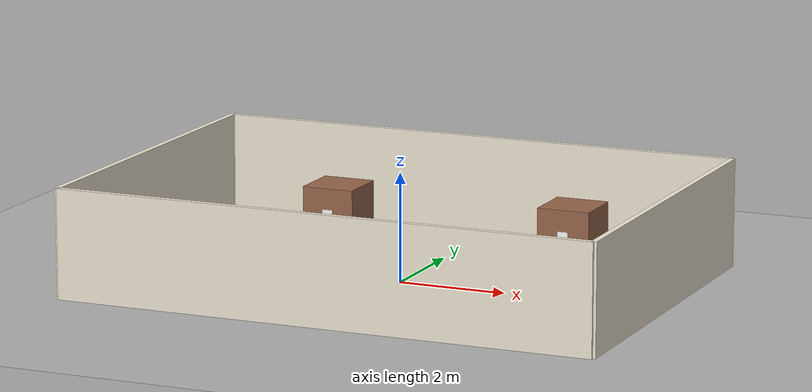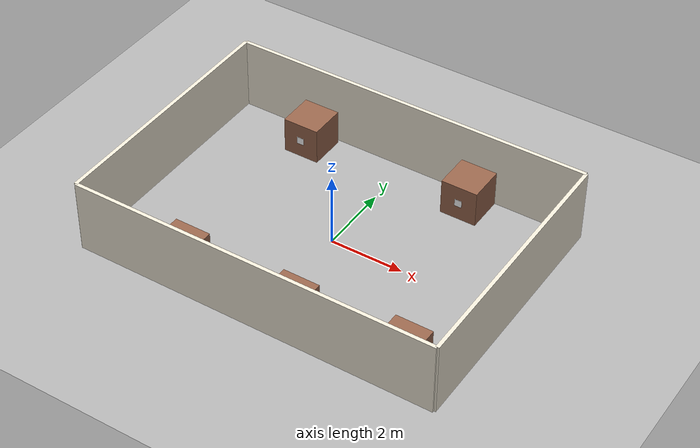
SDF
<?xml version="1.0" ?>
<sdf version='1.9'>
  <world name='smart_lab'>

    <plugin name='ignition::gazebo::systems::Physics' filename='ignition-gazebo-physics-system'/>
    <plugin name='ignition::gazebo::systems::UserCommands' filename='ignition-gazebo-user-commands-system'/>
    <plugin name='ignition::gazebo::systems::SceneBroadcaster' filename='ignition-gazebo-scene-broadcaster-system'/>
    <plugin name='ignition::gazebo::systems::Sensors' filename='ignition-gazebo-sensors-system'>
      <render_engine>ogre2</render_engine>
    </plugin>
    <plugin name='ignition::gazebo::systems::Imu' filename='ignition-gazebo-imu-system'/>

    <physics name='1ms' type='ignored'>
      <max_step_size>0.001</max_step_size>
      <real_time_factor>1</real_time_factor>
    </physics>
    <gravity>0 0 -9.8</gravity>

    <scene>
      <ambient>0.4 0.4 0.4 1</ambient>
      <background>0.7 0.7 0.7 1</background>
      <shadows>true</shadows>
    </scene>

    <light name='sun' type='directional'>
      <pose>0 0 10 0 0 0</pose>
      <cast_shadows>true</cast_shadows>
      <direction>-0.5 0.1 -0.9</direction>
      <diffuse>1 1 1 1</diffuse>
      <specular>0.5 0.5 0.5 1</specular>
      <attenuation>
        <range>1000</range>
        <linear>0.01</linear>
        <constant>0.9</constant>
        <quadratic>0.001</quadratic>
      </attenuation>
    </light>

    <model name='ground_plane'>
      <static>true</static>
      <link name='link'>
        <collision name='c'><geometry><plane><normal>0 0 1</normal><size>30 30</size></plane></geometry></collision>
        <visual name='v'>
          <geometry><plane><normal>0 0 1</normal><size>30 30</size></plane></geometry>
          <material><ambient>0.7 0.7 0.7 1</ambient><diffuse>0.7 0.7 0.7 1</diffuse></material>
        </visual>
      </link>
    </model>

    <model name='wall_west'>
      <static>true</static><pose>-5 0 1 0 0 0</pose>
      <link name='link'>
        <collision name='c'><geometry><box><size>0.1 7 2</size></box></geometry></collision>
        <visual name='v'><geometry><box><size>0.1 7 2</size></box></geometry>
          <material><ambient>0.95 0.92 0.85 1</ambient><diffuse>0.95 0.92 0.85 1</diffuse></material></visual>
      </link>
    </model>
    <model name='wall_east'>
      <static>true</static><pose>5 0 1 0 0 0</pose>
      <link name='link'>
        <collision name='c'><geometry><box><size>0.1 7 2</size></box></geometry></collision>
        <visual name='v'><geometry><box><size>0.1 7 2</size></box></geometry>
          <material><ambient>0.95 0.92 0.85 1</ambient><diffuse>0.95 0.92 0.85 1</diffuse></material></visual>
      </link>
    </model>
    <model name='wall_south'>
      <static>true</static><pose>0 -3.5 1 0 0 1.5707</pose>
      <link name='link'>
        <collision name='c'><geometry><box><size>0.1 10 2</size></box></geometry></collision>
        <visual name='v'><geometry><box><size>0.1 10 2</size></box></geometry>
          <material><ambient>0.95 0.92 0.85 1</ambient><diffuse>0.95 0.92 0.85 1</diffuse></material></visual>
      </link>
    </model>
    <model name='wall_north'>
      <static>true</static><pose>0 3.5 1 0 0 1.5707</pose>
      <link name='link'>
        <collision name='c'><geometry><box><size>0.1 10 2</size></box></geometry></collision>
        <visual name='v'><geometry><box><size>0.1 10 2</size></box></geometry>
          <material><ambient>0.95 0.92 0.85 1</ambient><diffuse>0.95 0.92 0.85 1</diffuse></material></visual>
      </link>
    </model>

    <model name='docking_box_0'>
      <static>true</static><pose>-2.47 -2.82 0.5 0 0 0</pose>
      <link name='link'>
        <collision name='c'><geometry><box><size>1 1 1</size></box></geometry></collision>
        <visual name='v'><geometry><box><size>1 1 1</size></box></geometry>
          <material><ambient>0.4 0.3 0.2 1</ambient><diffuse>0.6 0.4 0.3 1</diffuse></material></visual>
      </link>
    </model>
    <model name='docking_box_1'>
      <static>true</static><pose>0.72 -2.88 0.5 0 0 0</pose>
      <link name='link'>
        <collision name='c'><geometry><box><size>1 1 1</size></box></geometry></collision>
        <visual name='v'><geometry><box><size>1 1 1</size></box></geometry>
          <material><ambient>0.4 0.3 0.2 1</ambient><diffuse>0.6 0.4 0.3 1</diffuse></material></visual>
      </link>
    </model>
    <model name='docking_box_2'>
      <static>true</static><pose>3.70 -2.74 0.5 0 0 0</pose>
      <link name='link'>
        <collision name='c'><geometry><box><size>1 1 1</size></box></geometry></collision>
        <visual name='v'><geometry><box><size>1 1 1</size></box></geometry>
          <material><ambient>0.4 0.3 0.2 1</ambient><diffuse>0.6 0.4 0.3 1</diffuse></material></visual>
      </link>
    </model>
    <model name='docking_box_3'>
      <static>true</static><pose>-2.51 2.85 0.5 0 0 0</pose>
      <link name='link'>
        <collision name='c'><geometry><box><size>1 1 1</size></box></geometry></collision>
        <visual name='v'><geometry><box><size>1 1 1</size></box></geometry>
          <material><ambient>0.4 0.3 0.2 1</ambient><diffuse>0.6 0.4 0.3 1</diffuse></material></visual>
      </link>
    </model>
    <model name='docking_box_4'>
      <static>true</static><pose>2.15 2.93 0.5 0 0 0</pose>
      <link name='link'>
        <collision name='c'><geometry><box><size>1 1 1</size></box></geometry></collision>
        <visual name='v'><geometry><box><size>1 1 1</size></box></geometry>
          <material><ambient>0.4 0.3 0.2 1</ambient><diffuse>0.6 0.4 0.3 1</diffuse></material></visual>
      </link>
    </model>

    <!-- ===== ArUco 마커 5개 (인라인 + 절대경로 텍스처) ===== -->
    <model name='aruco_marker_0'>
      <static>true</static>
      <pose>-2.47 -2.31 0.5 0 0 3.1415</pose>
      <link name='link'>
        <visual name='visual'>
          <geometry><box><size>0.2 0.005 0.2</size></box></geometry>
          <material>
            <ambient>1 1 1 1</ambient>
            <diffuse>1 1 1 1</diffuse>
            <pbr><metal>
              <albedo_map>/home/yeari/jackal_ws/install/smartlab_project_bringup/share/smartlab_project_bringup/models/aruco_marker_0/materials/textures/aruco_0.png</albedo_map>
              <metalness>0.0</metalness>
              <roughness>1.0</roughness>
            </metal></pbr>
          </material>
        </visual>
        <collision name='collision'>
          <geometry><box><size>0.2 0.005 0.2</size></box></geometry>
        </collision>
      </link>
    </model>

    <model name='aruco_marker_1'>
      <static>true</static>
      <pose>0.72 -2.37 0.5 0 0 3.1415</pose>
      <link name='link'>
        <visual name='visual'>
          <geometry><box><size>0.2 0.005 0.2</size></box></geometry>
          <material>
            <ambient>1 1 1 1</ambient>
            <diffuse>1 1 1 1</diffuse>
            <pbr><metal>
              <albedo_map>/home/yeari/jackal_ws/install/smartlab_project_bringup/share/smartlab_project_bringup/models/aruco_marker_1/materials/textures/aruco_1.png</albedo_map>
              <metalness>0.0</metalness>
              <roughness>1.0</roughness>
            </metal></pbr>
          </material>
        </visual>
        <collision name='collision'>
          <geometry><box><size>0.2 0.005 0.2</size></box></geometry>
        </collision>
      </link>
    </model>

    <model name='aruco_marker_2'>
      <static>true</static>
      <pose>3.19 -2.74 0.5 0 0 -1.5707</pose>
      <link name='link'>
        <visual name='visual'>
          <geometry><box><size>0.2 0.005 0.2</size></box></geometry>
          <material>
            <ambient>1 1 1 1</ambient>
            <diffuse>1 1 1 1</diffuse>
            <pbr><metal>
              <albedo_map>/home/yeari/jackal_ws/install/smartlab_project_bringup/share/smartlab_project_bringup/models/aruco_marker_2/materials/textures/aruco_2.png</albedo_map>
              <metalness>0.0</metalness>
              <roughness>1.0</roughness>
            </metal></pbr>
          </material>
        </visual>
        <collision name='collision'>
          <geometry><box><size>0.2 0.005 0.2</size></box></geometry>
        </collision>
      </link>
    </model>

    <model name='aruco_marker_3'>
      <static>true</static>
      <pose>-2.51 2.34 0.5 0 0 0</pose>
      <link name='link'>
        <visual name='visual'>
          <geometry><box><size>0.2 0.005 0.2</size></box></geometry>
          <material>
            <ambient>1 1 1 1</ambient>
            <diffuse>1 1 1 1</diffuse>
            <pbr><metal>
              <albedo_map>/home/yeari/jackal_ws/install/smartlab_project_bringup/share/smartlab_project_bringup/models/aruco_marker_3/materials/textures/aruco_3.png</albedo_map>
              <metalness>0.0</metalness>
              <roughness>1.0</roughness>
            </metal></pbr>
          </material>
        </visual>
        <collision name='collision'>
          <geometry><box><size>0.2 0.005 0.2</size></box></geometry>
        </collision>
      </link>
    </model>

    <model name='aruco_marker_4'>
      <static>true</static>
      <pose>2.15 2.42 0.5 0 0 0</pose>
      <link name='link'>
        <visual name='visual'>
          <geometry><box><size>0.2 0.005 0.2</size></box></geometry>
          <material>
            <ambient>1 1 1 1</ambient>
            <diffuse>1 1 1 1</diffuse>
            <pbr><metal>
              <albedo_map>/home/yeari/jackal_ws/install/smartlab_project_bringup/share/smartlab_project_bringup/models/aruco_marker_4/materials/textures/aruco_4.png</albedo_map>
              <metalness>0.0</metalness>
              <roughness>1.0</roughness>
            </metal></pbr>
          </material>
        </visual>
        <collision name='collision'>
          <geometry><box><size>0.2 0.005 0.2</size></box></geometry>
        </collision>
      </link>
    </model>

  </world>
</sdf>
